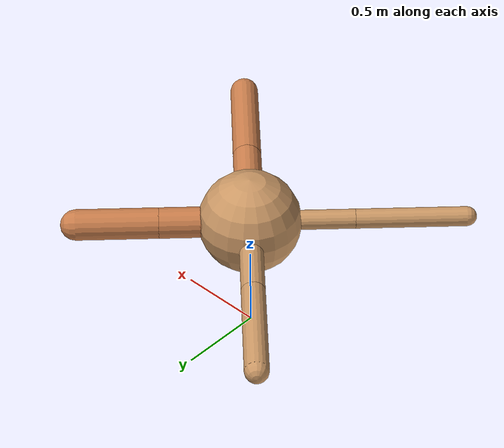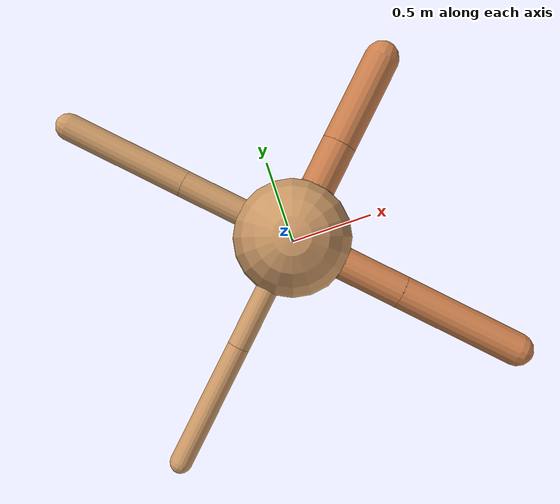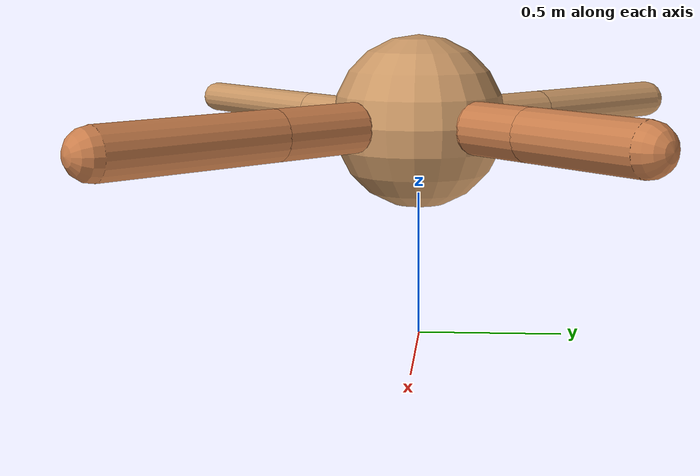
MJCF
<?xml version="1.0" ?>
<mujoco model="ant">

	<compiler angle="degree" coordinate="local" inertiafromgeom="true"/>

	<option integrator="RK4" timestep="0.01"/>

	<custom>

		<numeric data="0.0 0.0 0.55 1.0 0.0 0.0 0.0 0.0 1.0 0.0 -1.0 0.0 -1.0 0.0 1.0" name="init_qpos"/>

	</custom>

	<default>

		<joint armature="1" damping="1" limited="true"/>

		<geom conaffinity="0" condim="3" density="5.0" friction="1.5 0.1 0.1" margin="0.01" rgba="0.8 0.6 0.4 1"/>

	</default>

	<worldbody>

		<body name="torso" pos="0 0 0.75">

			<geom name="torso_geom" pos="0 0 0" size="0.29819204226624707" type="sphere"/>

			<!--joint armature="0" damping="0" limited="false" margin="0.01" name="root" pos="0 0 0" type="free"/-->

			<body name="front_left_leg" pos="0 0 0">

				<geom fromto="0 0 0 0.2 0.2 0" name="aux_1_geom" size="0.08919972609013083" type="capsule" rgba=".8 .5 .3 1"/>

				<body name="aux_1" pos="0.2 0.2 0">

					<joint axis="0 0 1" name="hip_1" pos="0.0 0.0 0.0" range="-40 40" type="hinge"/>

					<geom fromto="0 0 0 0.1675274989751748 0.1675274989751748 0" name="left_leg_geom" size="0.08919972609013083" type="capsule" rgba=".8 .5 .3 1"/>

					<body pos="0.1675274989751748 0.1675274989751748 0" name="front_left_foot">

						<joint axis="-1 1 0" name="ankle_1" pos="0.0 0.0 0.0" range="30 100" type="hinge"/>

						<geom fromto="0 0 0 0.3350549979503496 0.3350549979503496 0" name="left_ankle_geom" size="0.08919972609013083" type="capsule" rgba=".8 .5 .3 1"/>

					</body>

				</body>

			</body>

			<body name="front_right_leg" pos="0 0 0">

				<geom fromto="0 0 0 -0.2 0.2 0" name="aux_2_geom" size="0.06899571619572915" type="capsule"/>

				<body name="aux_2" pos="-0.2 0.2 0">

					<joint axis="0 0 1" name="hip_2" pos="0.0 0.0 0.0" range="-40 40" type="hinge"/>

					<geom fromto="0 0 0 -0.22480343348518012 0.22480343348518012 0" name="right_leg_geom" size="0.06899571619572915" type="capsule"/>

					<body pos="-0.22480343348518012 0.22480343348518012 0" name="front_right_foot">

						<joint axis="1 1 0" name="ankle_2" pos="0.0 0.0 0.0" range="-100 -30" type="hinge"/>

						<geom fromto="0 0 0 -0.44960686697036023 0.44960686697036023 0" name="right_ankle_geom" size="0.06899571619572915" type="capsule"/>

					</body>

				</body>

			</body>

			<body name="left_back_leg" pos="0 0 0">

				<geom fromto="0 0 0 -0.2 -0.2 0" name="aux_3_geom" size="0.05676643223017999" type="capsule"/>

				<body name="aux_3" pos="-0.2 -0.2 0">

					<joint axis="0 0 1" name="hip_3" pos="0.0 0.0 0.0" range="-40 40" type="hinge"/>

					<geom fromto="0 0 0 -0.22637987704322488 -0.22637987704322488 0" name="back_leg_geom" size="0.05676643223017999" type="capsule"/>

					<body pos="-0.22637987704322488 -0.22637987704322488 0" name="left_back_foot">

						<joint axis="-1 1 0" name="ankle_3" pos="0.0 0.0 0.0" range="-100 -30" type="hinge"/>

						<geom fromto="0 0 0 -0.45275975408644975 -0.45275975408644975 0" name="third_ankle_geom" size="0.05676643223017999" type="capsule"/>

					</body>

				</body>

			</body>

			<body name="right_back_leg" pos="0 0 0">

				<geom fromto="0 0 0 0.2 -0.2 0" name="aux_4_geom" size="0.08452285569647033" type="capsule" rgba=".8 .5 .3 1"/>

				<body name="aux_4" pos="0.2 -0.2 0">

					<joint axis="0 0 1" name="hip_4" pos="0.0 0.0 0.0" range="-40 40" type="hinge"/>

					<geom fromto="0 0 0 0.22606612039774762 -0.22606612039774762 0" name="rightback_leg_geom" size="0.08452285569647033" type="capsule" rgba=".8 .5 .3 1"/>

					<body pos="0.22606612039774762 -0.22606612039774762 0" name="right_back_foot">

						<joint axis="1 1 0" name="ankle_4" pos="0.0 0.0 0.0" range="30 100" type="hinge"/>

						<geom fromto="0 0 0 0.45213224079549524 -0.45213224079549524 0" name="fourth_ankle_geom" size="0.08452285569647033" type="capsule" rgba=".8 .5 .3 1"/>

					</body>

				</body>

			</body>

		</body>

	</worldbody>

	<actuator>

		<motor ctrllimited="true" ctrlrange="-1.0 1.0" joint="hip_4" gear="150"/>

		<motor ctrllimited="true" ctrlrange="-1.0 1.0" joint="ankle_4" gear="150"/>

		<motor ctrllimited="true" ctrlrange="-1.0 1.0" joint="hip_1" gear="150"/>

		<motor ctrllimited="true" ctrlrange="-1.0 1.0" joint="ankle_1" gear="150"/>

		<motor ctrllimited="true" ctrlrange="-1.0 1.0" joint="hip_2" gear="150"/>

		<motor ctrllimited="true" ctrlrange="-1.0 1.0" joint="ankle_2" gear="150"/>

		<motor ctrllimited="true" ctrlrange="-1.0 1.0" joint="hip_3" gear="150"/>

		<motor ctrllimited="true" ctrlrange="-1.0 1.0" joint="ankle_3" gear="150"/>

	</actuator>

</mujoco>
